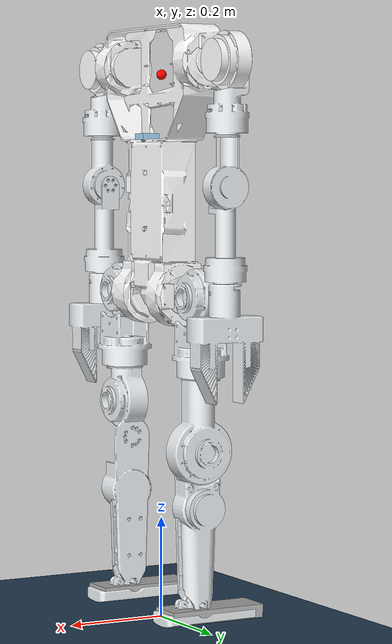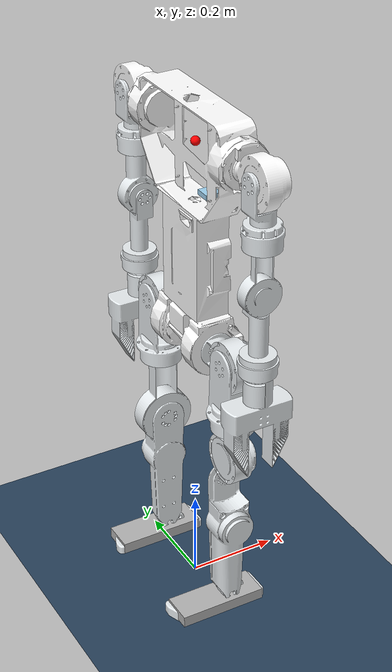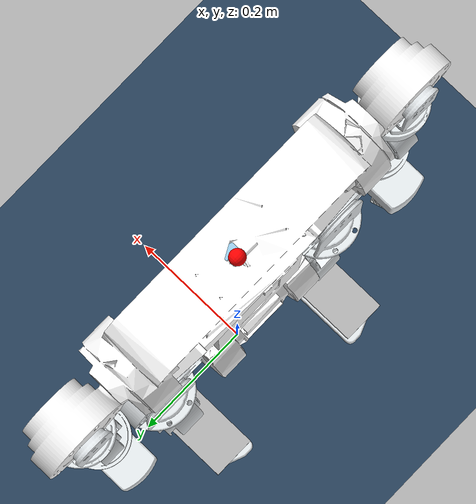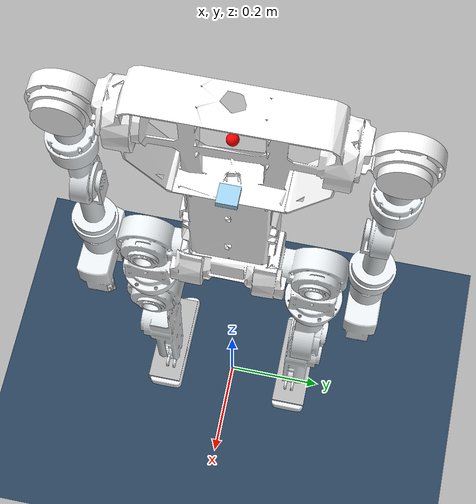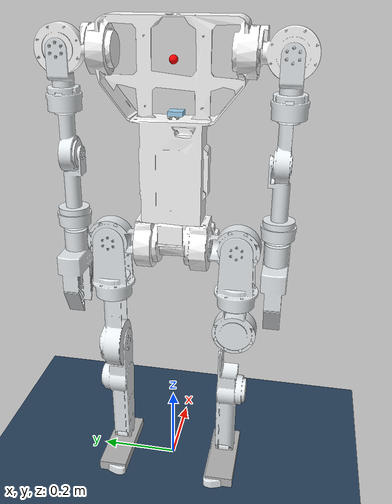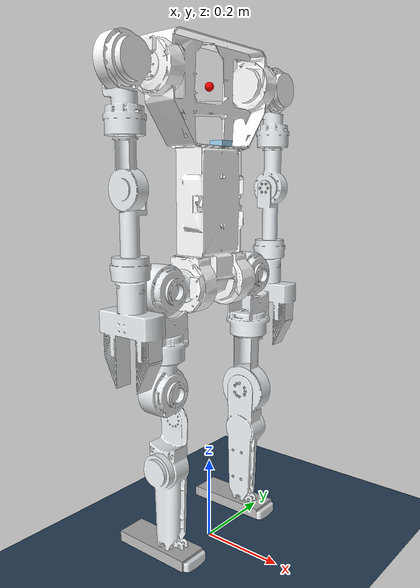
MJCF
<mujoco model="k-bot_sim smooth scene">
  <include file="robot.xml" />

  <statistic center="0.15 0.1 0.38" extent=".8" meansize="0.05" />

  <visual>
    <headlight diffuse="0.6 0.6 0.6" ambient="0.3 0.3 0.3" specular="0 0 0" />
    <rgba haze="0.15 0.25 0.35 1" />
    <global azimuth="220" elevation="-10" />
    <quality shadowsize="8192" />
  </visual>

  <asset>
    <texture type="skybox" builtin="gradient" rgb1="0.3 0.5 0.7" rgb2="0 0 0" width="512" height="3072" />
    <texture type="2d" name="groundplane" builtin="checker" mark="edge" rgb1="0.2 0.3 0.4" rgb2="0.1 0.2 0.3" markrgb="0.8 0.8 0.8" width="300" height="300" />
    <material name="groundplane" texture="groundplane" texuniform="true" texrepeat="5 5" reflectance="0.2" />
  </asset>

  <worldbody>
    <geom name="floor" type="plane"  contype="1" conaffinity="0" material="groundplane" friction="1 0.005 0.0001" pos="0 0 0" size="10 10 0.1"/>

  </worldbody>
</mujoco>

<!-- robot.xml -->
<mujoco model="k-bot_sim">
  <default>
    <default class="robot">
    <joint damping="1" armature="0.1"/>
      <default class="motor_00">
        <joint armature="0.0005" frictionloss="0.1" actuatorfrcrange="-20.0 20.0" />
        <motor ctrlrange="-20.0 20.0" />
      </default>
      <default class="motor_02">
        <joint armature="0.002" frictionloss="0.1" actuatorfrcrange="-30.0 30.0" />
        <motor ctrlrange="-30.0 30.0" />
      </default>
      <default class="motor_03">
        <joint armature="0.005" frictionloss="0.3" actuatorfrcrange="-100.0 100.0" />
        <motor ctrlrange="-100.0 100.0" />
      </default>
      <default class="motor_04">
        <joint armature="0.007" frictionloss="0.1" actuatorfrcrange="-200.0 200.0" />
        <motor ctrlrange="-200.0 200.0" />
      </default>
      <default class="visual">
        <geom material="visualgeom" contype="0" conaffinity="0" group="2" />
      </default>
      <default class="collision">
        <geom condim="6" mass="0" density="0" friction="0.8 0.02 0.01" group="3" />
      </default>
    </default>
  </default>

  <compiler angle="radian" autolimits="true"/>

  <asset>
    <material name="visualgeom" rgba="0.7 0.7 0.7 1" />
    <material name="floating_base_link_material" rgba="1 0 0 1" />
    <material name="body1-part_material" rgba="1 1 1 1" />
    <material name="imu_material" rgba="0.615686 0.811765 0.929412 1" />
    <material name="arm1_top_material" rgba="0.898039 0.917647 0.929412 1" />
    <material name="default_material" rgba="0.7 0.7 0.7 1" />
    <mesh name="body1-part.stl" file="meshes/body1-part.stl" />
    <mesh name="imu.stl" file="meshes/imu.stl" />
    <mesh name="shoulder.stl" file="meshes/shoulder.stl" />
    <mesh name="arm1_top.stl" file="meshes/arm1_top.stl" />
    <mesh name="arm2_shell.stl" file="meshes/arm2_shell.stl" />
    <mesh name="arm3_shell.stl" file="meshes/arm3_shell.stl" />
    <mesh name="hand_shell.stl" file="meshes/hand_shell.stl" />
    <mesh name="shoulder_2.stl" file="meshes/shoulder_2.stl" />
    <mesh name="arm1_top_2.stl" file="meshes/arm1_top_2.stl" />
    <mesh name="arm2_shell_2.stl" file="meshes/arm2_shell_2.stl" />
    <mesh name="arm3_shell2.stl" file="meshes/arm3_shell2.stl" />
    <mesh name="hand_shell_2.stl" file="meshes/hand_shell_2.stl" />
    <mesh name="leg0_shell.stl" file="meshes/leg0_shell.stl" />
    <mesh name="leg1_shell.stl" file="meshes/leg1_shell.stl" />
    <mesh name="leg2_shell.stl" file="meshes/leg2_shell.stl" />
    <mesh name="leg3_shell1.stl" file="meshes/leg3_shell1.stl" />
    <mesh name="foot1.stl" file="meshes/foot1.stl" />
    <mesh name="leg0_shell_2.stl" file="meshes/leg0_shell_2.stl" />
    <mesh name="leg1_shell3.stl" file="meshes/leg1_shell3.stl" />
    <mesh name="leg2_shell_2.stl" file="meshes/leg2_shell_2.stl" />
    <mesh name="leg3_shell11.stl" file="meshes/leg3_shell11.stl" />
    <mesh name="foot3.stl" file="meshes/foot3.stl" />
  </asset>

  <worldbody>
    <body name="floating_base_link" pos="0.00000000 0.00000000 1.08214252" childclass="robot">
      <freejoint name="floating_base" />
      <geom name="floating_base_link_visual" quat="0.7073882691671998 0.706825181105366 0.0 0.0" material="floating_base_link_material" type="sphere" size="0.01" class="visual" />
      <body name="body1-part" quat="0.7073882691671998 0.706825181105366 0.0 0.0">
        <inertial pos="-0.000153 -0.214129 -0.000094" mass="9.415838" diaginertia="0.406102 0.096732 0.321504" />
        <geom name="body1-part_visual" material="body1-part_material" type="mesh" mesh="body1-part.stl" class="visual" />
        <body name="imu" pos="0.039989 -0.127910 0" quat="0.7071068967259818 -0.7071066656470943 0.0 0.0">
          <inertial pos="-0.007500 0 0.006000" mass="0.010000" diaginertia="1e-06 1e-06 2e-06" />
          <geom name="imu_visual" material="imu_material" type="mesh" mesh="imu.stl" class="visual" />
          <site name="imu_site" />
        </body>
        <body name="shoulder" pos="-0.000011 0.018090 0.188500" quat="3.000000781252362e-14 -1.7320510330969674e-07 0.99999999999997 -1.7320510330969674e-07">
          <inertial pos="-0.002144 0.000055 -0.066483" mass="1.107356" diaginertia="0.001481 0.001039 0.000986" />
          <geom name="shoulder_visual" material="body1-part_material" type="mesh" mesh="shoulder.stl" class="visual" />
          <body name="arm1_top" pos="0.023512 0.000056 -0.067500" quat="0.5000001633974483 0.4999999999999733 0.49999983660255165 0.4999999999999733">
            <inertial pos="-0.099486 -0.000001 -0.019082" mass="0.572732" diaginertia="0.000453 0.001076 0.001035" />
            <geom name="arm1_top_visual" material="arm1_top_material" type="mesh" mesh="arm1_top.stl" class="visual" />
            <body name="arm2_shell" pos="-0.140500 0 -0.023500" quat="0.5000001633974483 -0.4999999999999733 0.49999983660255165 -0.4999999999999733">
              <inertial pos="-0.006339 0 -0.090482" mass="0.510678" diaginertia="0.000675 0.000532 0.000255" />
              <geom name="arm2_shell_visual" material="arm1_top_material" type="mesh" mesh="arm2_shell.stl" class="visual" />
              <body name="arm3_shell" pos="-0.027000 0 -0.098000" quat="-1.2247452309842457e-07 -0.7071068967259713 1.22474483074382e-07 -0.7071066656470838">
                <joint name="left_elbow_02" type="hinge" class="motor_02" range="-2.530727 0" axis="0 0 1" />
                <inertial pos="-0.140169 0 0.019433" mass="0.578536" diaginertia="0.000428 0.001354 0.001332" />
                <geom name="arm3_shell_visual" material="arm1_top_material" type="mesh" mesh="arm3_shell.stl" class="visual" />
                <body name="hand_shell" pos="-0.182500 0 0.021500" quat="0.5000001633974483 -0.4999999999999733 0.49999983660255165 -0.4999999999999733">
                  <joint name="left_wrist_02" type="hinge" class="motor_02" range="-3.141593 3.141593" axis="0 0 1" />
                  <inertial pos="0.000709 0.000130 -0.074657" mass="0.793063" diaginertia="0.002034 0.002869 0.00128" />
                  <geom name="hand_shell_visual" material="arm1_top_material" type="mesh" mesh="hand_shell.stl" class="visual" />
                </body>
              </body>
            </body>
          </body>
        </body>
        <body name="shoulder_2" pos="-0.000011 0.018090 -0.188500" quat="-1.7320510330969933e-07 0.0 -0.0 -0.999999999999985">
          <inertial pos="-0.002144 -0.000055 -0.066483" mass="1.107354" diaginertia="0.001481 0.001039 0.000986" />
          <geom name="shoulder_2_visual" material="body1-part_material" type="mesh" mesh="shoulder_2.stl" class="visual" />
          <body name="arm1_top_2" pos="0.023512 -0.000056 -0.067500" quat="0.5000001633974483 0.4999999999999733 -0.49999983660255165 -0.4999999999999733">
            <inertial pos="-0.099486 -0.000001 0.018082" mass="0.572732" diaginertia="0.000453 0.001076 0.001035" />
            <geom name="arm1_top_2_visual" material="arm1_top_material" type="mesh" mesh="arm1_top_2.stl" class="visual" />
            <body name="arm2_shell_2" pos="-0.140500 0 0.022500" quat="-1.2247452309842457e-07 -0.7071068967259713 -1.22474483074382e-07 0.7071066656470838">
              <inertial pos="0 -0.006339 0.089982" mass="0.510678" diaginertia="0.000532 0.000675 0.000255" />
              <geom name="arm2_shell_2_visual" material="arm1_top_material" type="mesh" mesh="arm2_shell_2.stl" class="visual" />
              <body name="arm3_shell2" pos="0 -0.027000 0.097500" quat="0.5000001633974483 -0.4999999999999733 0.4999999999999733 0.49999983660255165">
                <joint name="right_elbow_02" type="hinge" class="motor_02" range="0 2.530727" axis="0 0 1" />
                <inertial pos="-0.140169 0 0.019433" mass="0.578536" diaginertia="0.000428 0.001354 0.001332" />
                <geom name="arm3_shell2_visual" material="arm1_top_material" type="mesh" mesh="arm3_shell2.stl" class="visual" />
                <body name="hand_shell_2" pos="-0.182500 0 0.021500" quat="0.5000001633974483 0.4999999999999733 0.49999983660255165 0.4999999999999733">
                  <joint name="right_wrist_02" type="hinge" class="motor_02" range="-3.141593 3.141593" axis="0 0 1" />
                  <inertial pos="0.000709 0.000130 -0.074657" mass="0.793063" diaginertia="0.002034 0.002869 0.00128" />
                  <geom name="hand_shell_2_visual" material="arm1_top_material" type="mesh" mesh="hand_shell_2.stl" class="visual" />
                </body>
              </body>
            </body>
          </body>
        </body>
        <body name="leg0_shell" pos="-0.000011 -0.432010 0.088700" quat="3.000000781252362e-14 1.7320510330969674e-07 0.99999999999997 1.7320510330969674e-07">
          <joint name="left_hip_pitch_04" type="hinge" class="motor_04" range="-1.570796 1.570796" axis="0 0 1" />
          <inertial pos="-0.003746 0 -0.068125" mass="1.323448" diaginertia="0.001886 0.001425 0.0013" />
          <geom name="leg0_shell_visual" material="arm1_top_material" type="mesh" mesh="leg0_shell.stl" class="visual" />
          <body name="leg1_shell" pos="0.027500 0 -0.069500" quat="0.5000001633974483 -0.4999999999999733 -0.49999983660255165 0.4999999999999733">
            <joint name="left_hip_roll_03" type="hinge" class="motor_03" range="-3.185226 0.349066" axis="0 0 1" />
            <inertial pos="-0.112524 0.000529 0.025259" mass="1.264352" diaginertia="0.001481 0.002486 0.002413" />
            <geom name="leg1_shell_visual" material="arm1_top_material" type="mesh" mesh="leg1_shell.stl" class="visual" />
            <body name="leg2_shell" pos="-0.157500 0.000120 0.027500" quat="0.7071068967259818 0.0 0.7071066656470943 0.0">
              <joint name="left_hip_yaw_03" type="hinge" class="motor_03" range="-1.570796 1.570796" axis="0 0 1" />
              <inertial pos="0 0.000532 -0.137308" mass="1.820923" diaginertia="0.003118 0.004225 0.002064" />
              <geom name="leg2_shell_visual" material="arm1_top_material" type="mesh" mesh="leg2_shell.stl" class="visual" />
              <body name="leg3_shell1" pos="0 -0.027000 -0.142500" quat="0.7071068967259818 0.7071066656470943 0.0 0.0">
                <joint name="left_knee_04" type="hinge" class="motor_04" range="0 2.094395" axis="0 0 -1" />
                <inertial pos="0.001098 -0.131322 -0.023162" mass="1.109955" diaginertia="0.00674 0.001013 0.006746" />
                <geom name="leg3_shell1_visual" material="arm1_top_material" type="mesh" mesh="leg3_shell1.stl" class="visual" />
                <body name="foot1" pos="0 -0.300000 0.009500">
                  <joint name="left_ankle_02" type="hinge" class="motor_02" range="-0.698132 0.698132" axis="0 0 -1" />
                  <inertial pos="0.021350 -0.019419 -0.019276" mass="0.582091" diaginertia="0.000284 0.002188 0.002024" />
                  <geom name="foot1_visual" material="arm1_top_material" type="mesh" mesh="foot1.stl" class="visual" />
                  <geom name="foot1_collision_box" type="box" pos="0.029910 -0.01876 -0.023516" size="0.099910 0.013124 0.036000" class="collision" />
                    <geom name="foot1_collision_box_visual" type="box" pos="0.029910 -0.01876 -0.023516" size="0.099910 0.013124 0.036000" class="visual" />
                </body>
              </body>
            </body>
          </body>
        </body>
        <body name="leg0_shell_2" pos="-0.000011 -0.432010 -0.089200" quat="-1.7320510330969933e-07 0.0 -0.0 -0.999999999999985">
          <joint name="right_hip_pitch_04" type="hinge" class="motor_04" range="-1.570796 1.570796" axis="0 0 1" />
          <inertial pos="-0.003746 0 -0.067625" mass="1.323448" diaginertia="0.001886 0.001425 0.0013" />
          <geom name="leg0_shell_2_visual" material="arm1_top_material" type="mesh" mesh="leg0_shell_2.stl" class="visual" />
          <body name="leg1_shell3" pos="0.027500 0 -0.069000" quat="0.5000001633974483 0.4999999999999733 -0.49999983660255165 -0.4999999999999733">
            <joint name="right_hip_roll_03" type="hinge" class="motor_03" range="-0.349066 3.185226" axis="0 0 1" />
            <inertial pos="-0.112524 -0.000529 0.025259" mass="1.264352" diaginertia="0.001481 0.002486 0.002413" />
            <geom name="leg1_shell3_visual" material="arm1_top_material" type="mesh" mesh="leg1_shell3.stl" class="visual" />
            <body name="leg2_shell_2" pos="-0.157500 -0.000120 0.027500" quat="-1.2247452309842457e-07 -0.7071068967259713 1.22474483074382e-07 -0.7071066656470838">
              <joint name="right_hip_yaw_03" type="hinge" class="motor_03" range="-1.570796 1.570796" axis="0 0 1" />
              <inertial pos="0 0.000532 -0.137308" mass="1.820923" diaginertia="0.003118 0.004225 0.002064" />
              <geom name="leg2_shell_2_visual" material="arm1_top_material" type="mesh" mesh="leg2_shell_2.stl" class="visual" />
              <body name="leg3_shell11" pos="0 -0.027000 -0.142500" quat="0.7071068967259818 0.7071066656470943 0.0 0.0">
                <joint name="right_knee_04" type="hinge" class="motor_04" range="-2.094395 0" axis="0 0 -1" />
                <inertial pos="-0.001098 -0.131322 -0.023162" mass="1.109962" diaginertia="0.00674 0.001013 0.006746" />
                <geom name="leg3_shell11_visual" material="arm1_top_material" type="mesh" mesh="leg3_shell11.stl" class="visual" />
                <body name="foot3" pos="0 -0.300000 -0.035500" quat="3.000000781252362e-14 -1.7320510330969674e-07 0.99999999999997 -1.7320510330969674e-07">
                  <joint name="right_ankle_02" type="hinge" class="motor_02" range="-0.698132 0.698132" axis="0 0 1.0" />
                  <inertial pos="0.021350 -0.019419 -0.023724" mass="0.582091" diaginertia="0.000284 0.002188 0.002024" />
                  <geom name="foot3_visual" material="arm1_top_material" type="mesh" mesh="foot3.stl" class="visual" />
                  <geom name="foot3_collision_box" type="box" pos="0.029910 -0.01876 -0.023516" size="0.099910 0.013124 0.036000" class="collision" />
                  <geom name="foot3_collision_box_visual" type="box" pos="0.029910 -0.01876 -0.023516" size="0.099910 0.013124 0.036000" class="visual" />
                </body>
              </body>
            </body>
          </body>
        </body>
      </body>
      <site name="floating_base_link_site" />
      <camera name="tracking_camera" mode="track" pos="0.0 -2.0 1.0" quat="0.7071 0.3827 0.0 0.0" fovy="90.0" />
    </body>
  </worldbody>

  <actuator>
    <motor name="left_elbow_02_ctrl" joint="left_elbow_02" class="motor_02" />
    <motor name="left_wrist_02_ctrl" joint="left_wrist_02" class="motor_02" />
    <motor name="right_elbow_02_ctrl" joint="right_elbow_02" class="motor_02" />
    <motor name="right_wrist_02_ctrl" joint="right_wrist_02" class="motor_02" />
    <motor name="left_hip_pitch_04_ctrl" joint="left_hip_pitch_04" class="motor_04" />
    <motor name="left_hip_roll_03_ctrl" joint="left_hip_roll_03" class="motor_03" />
    <motor name="left_hip_yaw_03_ctrl" joint="left_hip_yaw_03" class="motor_03" />
    <motor name="left_knee_04_ctrl" joint="left_knee_04" class="motor_04" />
    <motor name="left_ankle_02_ctrl" joint="left_ankle_02" class="motor_02" />
    <motor name="right_hip_pitch_04_ctrl" joint="right_hip_pitch_04" class="motor_04" />
    <motor name="right_hip_roll_03_ctrl" joint="right_hip_roll_03" class="motor_03" />
    <motor name="right_hip_yaw_03_ctrl" joint="right_hip_yaw_03" class="motor_03" />
    <motor name="right_knee_04_ctrl" joint="right_knee_04" class="motor_04" />
    <motor name="right_ankle_02_ctrl" joint="right_ankle_02" class="motor_02" />
  </actuator>

  <sensor>
    <accelerometer name="imu_acc" site="imu_site" noise="0.01" />
    <gyro name="imu_gyro" site="imu_site" noise="0.01" />
    <magnetometer name="imu_mag" site="imu_site" noise="0.05" />
    <framepos name="base_link_pos" objtype="site" objname="imu_site" />
    <framequat name="base_link_quat" objtype="site" objname="imu_site" />
    <framelinvel name="base_link_vel" objtype="site" objname="imu_site" />
    <frameangvel name="base_link_ang_vel" objtype="site" objname="imu_site" />
  </sensor>

  <contact>
    <pair geom1="foot1_collision_box" geom2="floor"/>

    <pair geom1="foot3_collision_box" geom2="floor"/>
  </contact>
</mujoco>
